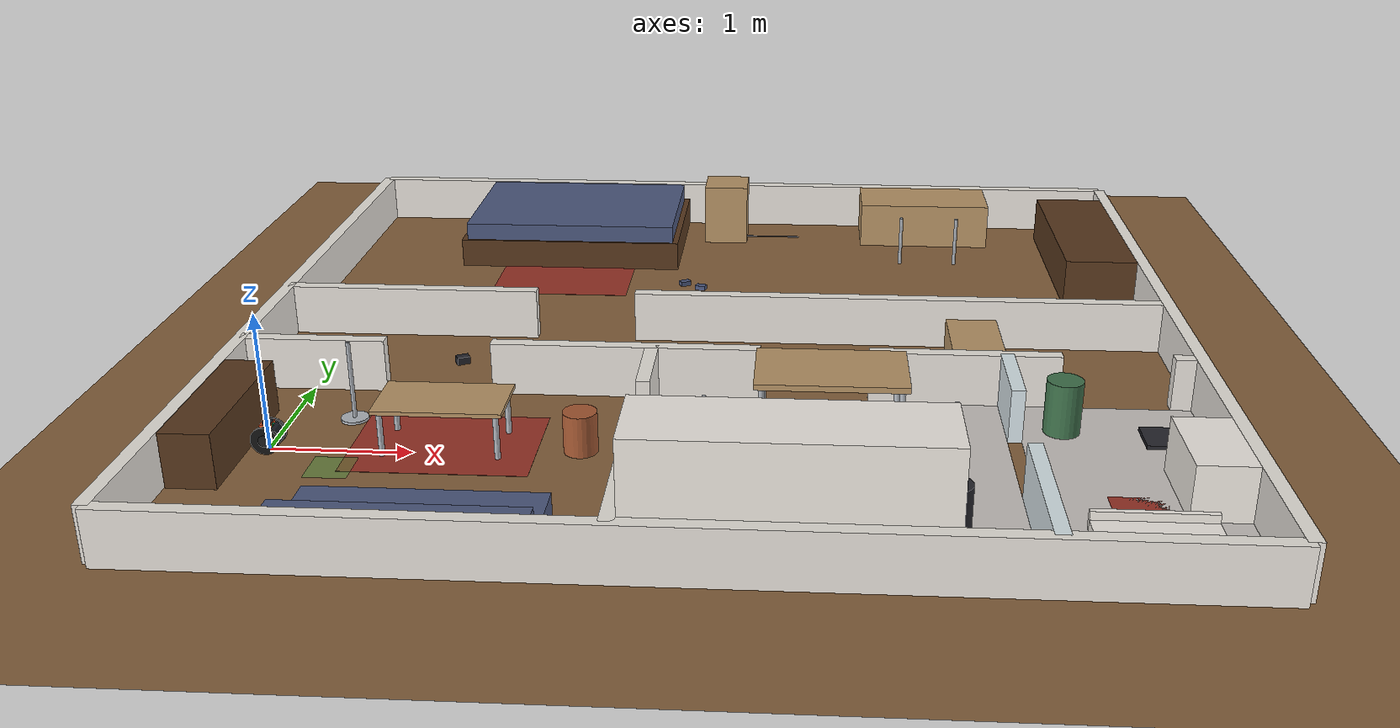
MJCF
<mujoco model="deskbot_apartment">

  <include file="deskbot.xml"/>

  <option timestep="0.002" gravity="0 0 -9.81" integrator="implicitfast">
    <flag multiccd="enable"/>
  </option>

  <visual>
    <headlight diffuse="0.4 0.4 0.4" ambient="0.35 0.35 0.35"/>
    <global offwidth="1280" offheight="720"/>
    <quality shadowsize="4096"/>
  </visual>

  <statistic center="3.0 2.0 0.15" extent="5.0"/>

  <asset>
    <!-- Floor textures -->
    <texture type="2d" name="parquet_tex" builtin="checker" width="512" height="512"
             rgb1="0.55 0.40 0.25" rgb2="0.50 0.36 0.22"
             mark="edge" markrgb="0.45 0.32 0.20"/>
    <material name="parquet" texture="parquet_tex" texrepeat="40 40"
              specular="0.3" shininess="0.2" reflectance="0.05"/>

    <texture type="2d" name="carrelage_tex" builtin="checker" width="512" height="512"
             rgb1="0.82 0.80 0.78" rgb2="0.75 0.73 0.71"
             mark="edge" markrgb="0.70 0.68 0.66"/>
    <material name="carrelage" texture="carrelage_tex" texrepeat="30 30"
              specular="0.4" shininess="0.3" reflectance="0.1"/>

    <!-- Wall / furniture materials -->
    <material name="mur" rgba="0.92 0.90 0.87 1" specular="0.1" shininess="0.05"/>
    <material name="mur_cuisine" rgba="0.88 0.90 0.85 1" specular="0.15" shininess="0.1"/>
    <material name="mur_sdb" rgba="0.85 0.90 0.92 1" specular="0.2" shininess="0.15"/>
    <material name="bois_fonce" rgba="0.35 0.22 0.12 1" specular="0.3" shininess="0.2"/>
    <material name="bois_clair" rgba="0.72 0.58 0.40 1" specular="0.25" shininess="0.15"/>
    <material name="tissu" rgba="0.30 0.35 0.50 1" specular="0.05" shininess="0.02"/>
    <material name="tissu_vert" rgba="0.25 0.45 0.30 1" specular="0.05" shininess="0.02"/>
    <material name="metal" rgba="0.70 0.72 0.75 1" specular="0.7" shininess="0.5"/>
    <material name="plastique" rgba="0.15 0.15 0.18 1" specular="0.3" shininess="0.2"/>
    <material name="ceramique" rgba="0.95 0.93 0.90 1" specular="0.5" shininess="0.4"/>
    <material name="tapis" rgba="0.60 0.20 0.15 1" specular="0.02" shininess="0.01"/>
    <material name="pot" rgba="0.65 0.35 0.20 1" specular="0.2" shininess="0.1"/>
    <material name="start_zone" rgba="0.2 0.8 0.3 0.3" specular="0" shininess="0"/>
  </asset>

  <worldbody>
    <!-- Lighting — one per room -->
    <light pos="1.00 -0.25 2.0" dir="0 0 -1" diffuse="0.70 0.65 0.55" castshadow="true"/>
    <light pos="3.85 -0.25 2.0" dir="0 0 -1" diffuse="0.65 0.65 0.60" castshadow="true"/>
    <light pos="5.85 -0.25 2.0" dir="0 0 -1" diffuse="0.60 0.60 0.65" castshadow="false"/>
    <light pos="3.00  1.60 2.0" dir="0 0 -1" diffuse="0.50 0.50 0.50" castshadow="false"/>
    <light pos="3.00  3.70 2.0" dir="0 0 -1" diffuse="0.70 0.65 0.55" castshadow="true"/>

    <!-- ============================================================
         FLOOR
         ============================================================ -->
    <geom name="floor" type="plane" size="10 10 0.05" material="parquet"
          contype="1" conaffinity="1"/>

    <!-- Carrelage overlays: cuisine + SDB -->
    <geom name="floor_cuisine" type="box" size="1.25 1.25 0.001"
          pos="3.85 -0.25 0.001" material="carrelage"
          contype="1" conaffinity="1"/>
    <geom name="floor_sdb" type="box" size="0.65 1.25 0.001"
          pos="5.85 -0.25 0.001" material="carrelage"
          contype="1" conaffinity="1"/>

    <!-- Robot start zone -->
    <geom type="box" size="0.15 0.15 0.0005" pos="0.50 -0.25 0.002"
          material="start_zone" contype="0" conaffinity="0"/>

    <!-- ============================================================
         EXTERIOR WALLS
         ============================================================ -->

    <!-- West wall: X=-0.55, Y from -1.55 to 5.25 -->
    <geom name="wall_W" type="box" size="0.05 3.40 0.20"
          pos="-0.55 1.85 0.20" material="mur"/>

    <!-- East wall: X=6.55, Y from -1.55 to 5.25 -->
    <geom name="wall_E" type="box" size="0.05 3.40 0.20"
          pos="6.55 1.85 0.20" material="mur"/>

    <!-- South wall: Y=-1.55, X from -0.55 to 6.55 -->
    <geom name="wall_S" type="box" size="3.55 0.05 0.20"
          pos="3.00 -1.55 0.20" material="mur"/>

    <!-- North wall: Y=5.25, X from -0.55 to 6.55 -->
    <geom name="wall_N" type="box" size="3.55 0.05 0.20"
          pos="3.00 5.25 0.20" material="mur"/>

    <!-- Segment 1: X from -0.55 to 0.55 (west of salon door) -->
    <geom name="wall_cor_S1" type="box" size="0.55 0.05 0.20"
          pos="0.00 1.05 0.20" material="mur"/>

    <!-- SALON DOOR: X [0.55 to 1.35] = 0.80m -->

    <!-- Segment 2: X from 1.35 to 3.35 (between salon and cuisine doors) -->
    <geom name="wall_cor_S2" type="box" size="1.00 0.05 0.20"
          pos="2.35 1.05 0.20" material="mur"/>

    <!-- CUISINE DOOR: X [3.35 to 4.15] = 0.80m -->

    <!-- Segment 3: X from 4.15 to 5.55 (between cuisine and SDB doors) -->
    <geom name="wall_cor_S3" type="box" size="0.70 0.05 0.20"
          pos="4.85 1.05 0.20" material="mur"/>

    <!-- SDB DOOR: X [5.55 to 6.35] = 0.80m -->

    <!-- Segment 4: X from 6.35 to 6.55 (east of SDB door) -->
    <geom name="wall_cor_S4" type="box" size="0.10 0.05 0.20"
          pos="6.45 1.05 0.20" material="mur"/>

    <!-- Segment left: X from -0.55 to 1.50 -->
    <geom name="wall_cor_N1" type="box" size="1.025 0.05 0.20"
          pos="0.475 2.15 0.20" material="mur"/>

    <!-- CHAMBRE DOOR: X [1.50 to 2.30] = 0.80m -->

    <!-- Segment right: X from 2.30 to 6.55 -->
    <geom name="wall_cor_N2" type="box" size="2.125 0.05 0.20"
          pos="4.425 2.15 0.20" material="mur"/>

    <!-- ============================================================
         INTERIOR WALLS — VERTICAL DIVIDERS
         ============================================================ -->

    <!-- Salon ↔ Cuisine wall (X=2.55, from Y=-1.55 to Y=1.05)
         Door opening: Y [-0.40 to 0.40] = 0.80m -->

    <!-- Bottom segment: Y from -1.55 to -0.40 -->
    <geom name="wall_sal_cui_B" type="box" size="0.05 0.575 0.20"
          pos="2.55 -0.975 0.20" material="mur"/>

    <!-- Top segment: Y from 0.40 to 1.05 -->
    <geom name="wall_sal_cui_T" type="box" size="0.05 0.325 0.20"
          pos="2.55 0.725 0.20" material="mur"/>

    <!-- Cuisine ↔ SDB wall (X=5.15, from Y=-1.55 to Y=1.05)
         Door opening: Y [-0.40 to 0.40] = 0.80m -->

    <!-- Bottom segment: Y from -1.55 to -0.40 -->
    <geom name="wall_cui_sdb_B" type="box" size="0.05 0.575 0.20"
          pos="5.15 -0.975 0.20" material="mur_sdb"/>

    <!-- Top segment: Y from 0.40 to 1.05 -->
    <geom name="wall_cui_sdb_T" type="box" size="0.05 0.325 0.20"
          pos="5.15 0.725 0.20" material="mur_sdb"/>

    <!-- Canapé — 1.60m × 0.70m, against south wall
         Assise: pos Y_center = -1.50 + 0.35 = -1.15
         Y extent: [-1.50, -0.80]
         Gap to table basse pieds (Y=-0.10): 0.80-0.10 = 0.70m ✓ -->
    <!-- Canapé shifted west so east edge (X=2.10) leaves 40cm to salon/cuisine wall (X=2.50) -->
    <geom name="canape_assise" type="box" size="0.80 0.35 0.08"
          pos="1.30 -1.15 0.08" material="tissu"
          friction="0.8 0.005 0.001"/>
    <geom name="canape_dossier" type="box" size="0.80 0.06 0.15"
          pos="1.30 -1.44 0.23" material="tissu"/>

    <geom name="table_basse_plateau" type="box" size="0.45 0.25 0.015"
          pos="1.20 0.15 0.34" material="bois_clair"
          contype="0" conaffinity="0"/>
    <geom name="table_basse_p1" type="cylinder" size="0.02 0.165"
          pos="0.80 0.35 0.165" material="metal"/>
    <geom name="table_basse_p2" type="cylinder" size="0.02 0.165"
          pos="1.60 0.35 0.165" material="metal"/>
    <geom name="table_basse_p3" type="cylinder" size="0.02 0.165"
          pos="0.80 -0.05 0.165" material="metal"/>
    <geom name="table_basse_p4" type="cylinder" size="0.02 0.165"
          pos="1.60 -0.05 0.165" material="metal"/>

    <!-- Tapis sous table basse — visual only, not a physical barrier for large wheels -->
    <geom name="tapis_salon" type="box" size="0.65 0.45 0.001"
          pos="1.20 0.15 0.001" material="tapis"
          contype="0" conaffinity="0"/>

    <geom name="meuble_tv" type="box" size="0.175 0.60 0.20"
          pos="-0.32 0.00 0.20" material="bois_fonce"/>

    <!-- Pot moved to X=2.15 for 41cm gap to nearest table pied (X=1.62) -->
    <geom name="pot_plante" type="cylinder" size="0.12 0.15"
          pos="2.15 0.10 0.15" material="pot"/>

    <!-- Lampe moved to X=0.45 for 40cm+ gap to meuble TV (X_max=-0.15) -->
    <geom name="lampe_pied" type="cylinder" size="0.015 0.30"
          pos="0.45 0.50 0.30" material="metal"/>
    <geom name="lampe_base" type="cylinder" size="0.10 0.01"
          pos="0.45 0.50 0.01" material="metal"/>

    <!-- Chaussures — small low obstacles near corridor door
         Near X=0.95, Y=0.75 (approaching the door at X[0.55-1.35], Y=1.00)
         Small enough to go around -->
    <geom name="chaussure_1" type="box" size="0.05 0.035 0.03"
          pos="0.70 0.75 0.03" material="plastique" euler="0 0 0.3"/>
    <geom name="chaussure_2" type="box" size="0.05 0.035 0.03"
          pos="0.85 0.85 0.03" material="plastique" euler="0 0 -0.2"/>

    <!-- ============================================================
         COULOIR (7.00 × 1.00m) — X[-0.50, 6.50] × Y[1.10, 2.10]
         ============================================================ -->

    <!-- Paillasson — flat (5mm), robot rolls over, near cuisine door
         Door at X[3.35-4.15] -->
    <geom name="paillasson" type="box" size="0.25 0.20 0.001"
          pos="3.75 1.60 0.001" material="tapis"
          contype="0" conaffinity="0"/>

    <!-- Small shoe in corridor — low obstacle, doesn't block -->
    <geom name="chaussure_couloir" type="box" size="0.05 0.035 0.03"
          pos="1.00 1.55 0.03" material="plastique" euler="0 0 0.5"/>

    <geom name="carton_challenge" type="box" size="0.20 0.35 0.12"
          pos="5.00 1.75 0.12" material="bois_clair"/>

    <!-- ============================================================
         CUISINE (2.50 × 2.50m) — X[2.60, 5.10] × Y[-1.50, 1.00]
         ============================================================ -->

    <geom name="comptoir" type="box" size="1.00 0.30 0.45"
          pos="3.60 -1.20 0.45" material="ceramique"/>

    <geom name="table_cuisine_plateau" type="box" size="0.50 0.30 0.02"
          pos="3.85 -0.10 0.74" material="bois_clair"
          contype="0" conaffinity="0"/>
    <geom name="table_cui_p1" type="cylinder" size="0.02 0.36"
          pos="3.40 0.15 0.36" material="metal"/>
    <geom name="table_cui_p2" type="cylinder" size="0.02 0.36"
          pos="4.30 0.15 0.36" material="metal"/>
    <geom name="table_cui_p3" type="cylinder" size="0.02 0.36"
          pos="3.40 -0.35 0.36" material="metal"/>
    <geom name="table_cui_p4" type="cylinder" size="0.02 0.36"
          pos="4.30 -0.35 0.36" material="metal"/>

    <!-- Chaises — pieds seulement, 2 chaises each side of table
         Chaise 1 (west): X=3.00. Pieds at Y[-0.30, 0.10]
         Gap to salon/cuisine wall (X=2.60): 3.00-0.015-2.60 = 0.385m ✓ -->
    <geom name="chaise1_p1" type="cylinder" size="0.015 0.22"
          pos="3.00 0.10 0.22" material="metal"/>
    <geom name="chaise1_p2" type="cylinder" size="0.015 0.22"
          pos="3.00 -0.30 0.22" material="metal"/>
    <!-- Chaise 2 (east): X=4.70.
         Gap to cuisine/SDB wall (X=5.10): 5.10-(4.70+0.015) = 0.385m ✓ -->
    <geom name="chaise2_p1" type="cylinder" size="0.015 0.22"
          pos="4.70 0.10 0.22" material="metal"/>
    <geom name="chaise2_p2" type="cylinder" size="0.015 0.22"
          pos="4.70 -0.30 0.22" material="metal"/>

    <!-- Poubelle moved north for 48cm gap to south wall (Y=-1.50) -->
    <geom name="poubelle" type="cylinder" size="0.12 0.18"
          pos="4.60 -0.90 0.18" material="plastique"/>

    <!-- Bouteille d'eau au sol — tiny obstacle -->
    <!-- Bouteille against cuisine/SDB wall, outside comptoir X shadow -->
    <geom name="bouteille" type="cylinder" size="0.04 0.12"
          pos="5.05 -1.30 0.12" material="plastique"/>

    <!-- Tapis cuisine — visual only -->
    <geom name="tapis_cuisine" type="box" size="0.30 0.20 0.001"
          pos="3.60 -0.70 0.001" material="tapis"
          contype="0" conaffinity="0"/>

    <!-- ============================================================
         CHAMBRE (7.00 × 3.00m) — X[-0.50, 6.50] × Y[2.20, 5.20]
         ============================================================ -->

    <geom name="lit_sommier" type="box" size="1.00 0.70 0.125"
          pos="1.50 4.50 0.125" material="bois_fonce"/>
    <geom name="lit_matelas" type="box" size="0.95 0.68 0.075"
          pos="1.50 4.50 0.325" material="tissu"
          contype="0" conaffinity="0"/>

    <geom name="chevet" type="box" size="0.20 0.20 0.275"
          pos="2.90 4.80 0.275" material="bois_clair"/>

    <geom name="armoire" type="box" size="0.30 0.90 0.20"
          pos="6.20 4.00 0.20" material="bois_fonce"/>

    <!-- Tapis chambre — visual only -->
    <geom name="tapis_chambre" type="box" size="0.60 0.40 0.001"
          pos="1.50 3.50 0.001" material="tapis"
          contype="0" conaffinity="0"/>

    <!-- Chaussons — low obstacles near bed -->
    <geom name="chausson_1" type="box" size="0.045 0.03 0.02"
          pos="2.60 3.40 0.02" material="tissu" euler="0 0 0.5"/>
    <geom name="chausson_2" type="box" size="0.045 0.03 0.02"
          pos="2.75 3.30 0.02" material="tissu" euler="0 0 -0.3"/>

    <!-- Câble chargeur au sol — very thin, very low -->
    <geom name="cable" type="capsule" size="0.005 0.40"
          pos="3.20 4.80 0.005" euler="0 1.5708 0.2"
          material="plastique"/>

    <!-- Livre tombé au sol -->
    <geom name="livre" type="box" size="0.11 0.08 0.012"
          pos="4.00 3.00 0.012" material="bois_clair" euler="0 0 0.7"/>

    <!-- Bureau — 1.20 × 0.60m, right side of chambre
         pos: X=4.80, Y=5.20-0.30=4.90
         Y extent: [4.30, 5.20] (against north wall)
         Gap south (Y=4.30) → open: plenty -->
    <geom name="bureau" type="box" size="0.60 0.30 0.20"
          pos="4.80 4.90 0.20" material="bois_clair"/>

    <geom name="chaise_bureau_p1" type="cylinder" size="0.015 0.22"
          pos="4.55 4.10 0.22" material="metal"/>
    <geom name="chaise_bureau_p2" type="cylinder" size="0.015 0.22"
          pos="5.05 4.10 0.22" material="metal"/>

    <!-- Meuble vasque — 0.70 × 0.40m, against east wall
         pos: X=6.50-0.20=6.30, Y=-0.30
         Gap west of vasque (X=6.30-0.20=6.10) → SDB west wall (5.20): 0.90m ✓ -->
    <geom name="vasque" type="box" size="0.20 0.35 0.20"
          pos="6.30 -0.30 0.20" material="ceramique"/>

    <!-- Douche — bac au sol with rebord, in south end
         pos: X=5.85, Y=-1.15
         Bac Y extent: [-1.50, -0.80]. Rebord at Y=-0.80. -->
    <geom name="douche_bac" type="box" size="0.40 0.35 0.04"
          pos="5.85 -1.15 0.04" material="ceramique"/>
    <geom name="douche_rebord" type="box" size="0.40 0.02 0.07"
          pos="5.85 -0.78 0.07" material="ceramique"/>

    <geom name="panier_linge" type="cylinder" size="0.13 0.20"
          pos="5.50 0.60 0.20" material="tissu_vert"/>

    <!-- Tapis de bain — visual only -->
    <geom name="tapis_sdb" type="box" size="0.20 0.15 0.001"
          pos="5.85 -0.50 0.001" material="tapis"
          contype="0" conaffinity="0"/>

    <!-- Pèse-personne — flat obstacle -->
    <geom name="pese_personne" type="box" size="0.15 0.15 0.015"
          pos="6.20 0.50 0.015" material="plastique"/>

  </worldbody>
</mujoco>

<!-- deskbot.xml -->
<mujoco model="deskbot">

  <compiler angle="radian"/>

  <default>
    <joint damping="0.008" armature="0.001"/>
    <geom friction="1.2 0.005 0.001" condim="4" contype="1" conaffinity="1"
          solref="0.005 1.0"/>
    <motor ctrlrange="-3.0 3.0"/>

    <default class="wheel">
      <joint damping="0.003"/>
      <geom material="tire" mass="0.05"/>
    </default>
    <default class="hub">
      <geom material="wheel" contype="0" conaffinity="0" mass="0.005"/>
    </default>
    <default class="visual">
      <geom contype="0" conaffinity="0" mass="0.001"/>
    </default>
  </default>

  <asset>
    <material name="chassis" rgba="0.18 0.20 0.24 1" specular="0.6" shininess="0.4"/>
    <material name="body"    rgba="0.22 0.50 0.72 1" specular="0.5" shininess="0.3"/>
    <material name="accent"  rgba="0.90 0.35 0.15 1" specular="0.4" shininess="0.2"/>
    <material name="screen"  rgba="0.15 0.85 0.55 1" specular="0.8" shininess="0.9"
              emission="0.4"/>
    <material name="wheel"   rgba="0.12 0.12 0.12 1" specular="0.2" shininess="0.05"/>
    <material name="tire"    rgba="0.08 0.08 0.08 1" specular="0.05" shininess="0.01"/>
  </asset>

  <worldbody>
    <body name="chassis" pos="0 0 0.10">
      <joint type="free"/>

      <geom name="base" type="cylinder" size="0.09 0.065"
            pos="0 0 0" euler="1.5708 0 0"
            mass="0.05" material="chassis"/>

      <!-- Main body — cubic block, straddles axle -->
      <geom name="body" type="box" size="0.05 0.058 0.055"
            pos="0 0 0.015" mass="0.35" material="body"/>

      <!-- Head (battery + electronics → heavy) -->
      <geom name="head" type="box" size="0.04 0.048 0.016"
            pos="0 0 0.086" mass="0.18" material="accent"/>

      <!-- Sensor pod — small platform 1cm above head for VL53L0X modules.
           Clearance: sqrt(0² + 0.112²) = 11.2cm > R=10cm → 12mm margin.
           The pod sits just above the wheel tops. -->
      <geom name="sensor_pod" type="box" size="0.030 0.030 0.005"
            pos="0.005 0 0.107" mass="0.02" material="chassis"/>

      <!-- Front screen / LED indicator -->
      <geom name="screen" type="box" size="0.001 0.035 0.030"
            pos="0.051 0 0.015" material="screen" class="visual"/>

      <!-- Face indicator on head -->
      <geom name="face" type="box" size="0.001 0.020 0.010"
            pos="0.041 0 0.086" material="screen" class="visual"/>

      <!-- IMU sensor site (near CoM) -->
      <site name="imu" pos="0 0 0.0" size="0.003" rgba="1 0 0 0.5"/>

      <!-- Camera mount site (on head, forward-facing) -->
      <site name="cam_mount" pos="0.04 0 0.086" zaxis="1 0 0" size="0.005"
            rgba="0.2 0.2 0.2 1"/>

      <!-- FC: front center — LOW mount, horizontal -->
      <site name="rf_FC" pos="0.055 0 -0.04"
            zaxis="1 0 0"
            size="0.004" rgba="1 0.2 0.2 0.8"/>
      <!-- FL: front-left 30deg — LOW mount, near center, horizontal -->
      <site name="rf_FL" pos="0.055 0.015 -0.04"
            zaxis="0.866 0.5 0"
            size="0.004" rgba="1 0.2 0.2 0.8"/>
      <!-- FR: front-right 30deg — LOW mount, near center, horizontal -->
      <site name="rf_FR" pos="0.055 -0.015 -0.04"
            zaxis="0.866 -0.5 0"
            size="0.004" rgba="1 0.2 0.2 0.8"/>
      <site name="rf_FL2" pos="0.015 0.025 0.112"
            zaxis="0.5714 0.8161 -0.0872"
            size="0.004" rgba="1 0.6 0.2 0.8"/>
      <!-- FR2: front-right-wide 55deg — HIGH mount on pod, -5deg tilt -->
      <site name="rf_FR2" pos="0.015 -0.025 0.112"
            zaxis="0.5714 -0.8161 -0.0872"
            size="0.004" rgba="1 0.6 0.2 0.8"/>
      <!-- SL: side-left 90deg — HIGH mount on pod, -5deg tilt -->
      <site name="rf_SL" pos="0.0 0.025 0.112"
            zaxis="0 0.9962 -0.0872"
            size="0.004" rgba="1 0.2 0.2 0.8"/>
      <!-- SR: side-right 90deg — HIGH mount on pod, -5deg tilt -->
      <site name="rf_SR" pos="0.0 -0.025 0.112"
            zaxis="0 -0.9962 -0.0872"
            size="0.004" rgba="1 0.2 0.2 0.8"/>

      <!-- Left wheel (R=10cm, tight to body: 13mm gap) -->
      <body name="wheel_L" pos="0 0.08 0">
        <joint name="wheel_L" type="hinge" axis="0 1 0" class="wheel"/>
        <geom name="tire_L" type="cylinder" size="0.10 0.009"
              euler="1.5708 0 0" class="wheel"/>
        <geom name="hub_L" type="cylinder" size="0.045 0.01"
              euler="1.5708 0 0" class="hub"/>
      </body>

      <!-- Right wheel (R=10cm, tight to body: 13mm gap) -->
      <body name="wheel_R" pos="0 -0.08 0">
        <joint name="wheel_R" type="hinge" axis="0 1 0" class="wheel"/>
        <geom name="tire_R" type="cylinder" size="0.10 0.009"
              euler="1.5708 0 0" class="wheel"/>
        <geom name="hub_R" type="cylinder" size="0.045 0.01"
              euler="1.5708 0 0" class="hub"/>
      </body>

      <!-- Robot-attached cameras -->
      <camera name="follow" mode="track" pos="0.8 -0.5 0.4"
              xyaxes="0.6 1 0 -0.2 0 1"/>
      <camera name="onboard" mode="fixed" pos="0.06 0 0.10"
              xyaxes="0 -1 0 0 0 1"/>
    </body>
  </worldbody>

  <actuator>
    <motor joint="wheel_L" name="motor_L" gear="1"/>
    <motor joint="wheel_R" name="motor_R" gear="1"/>
  </actuator>

  <sensor>
    <!-- IMU (MPU6050-like): accelerometer + gyroscope -->
    <accelerometer name="accel" site="imu"/>
    <gyro          name="gyro"  site="imu"/>
    <!-- Wheel encoders: angular velocity -->
    <jointvel name="enc_L" joint="wheel_L"/>
    <jointvel name="enc_R" joint="wheel_R"/>
  </sensor>
</mujoco>
